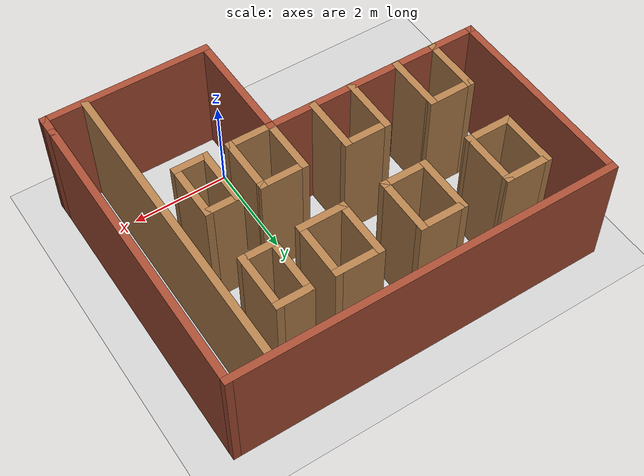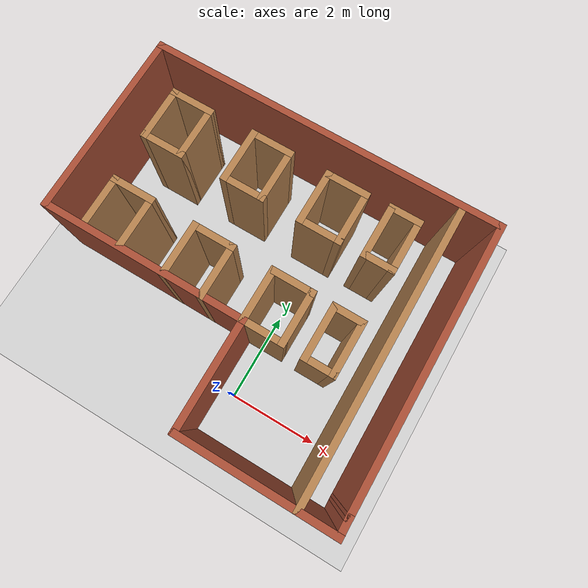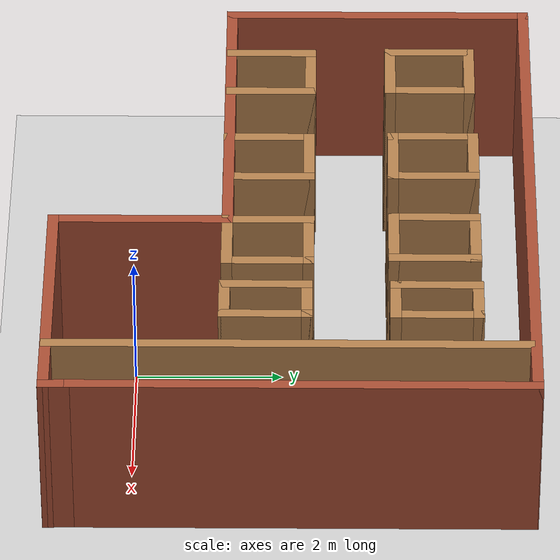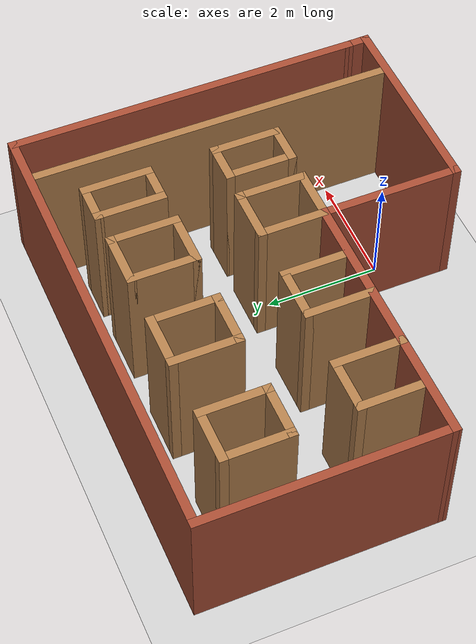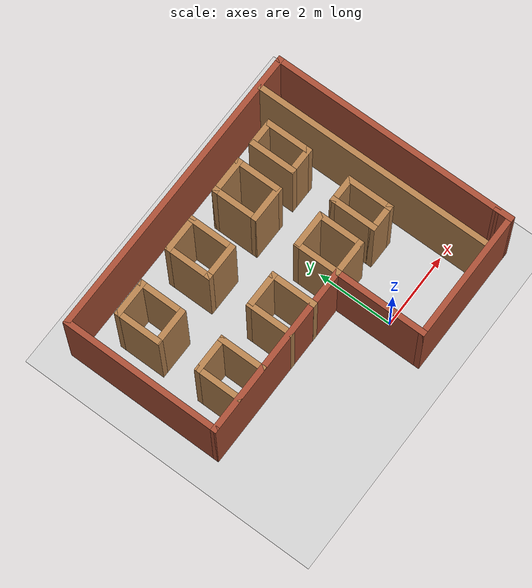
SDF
<sdf version="1.7">
 <world name="default">
  <light name="sun" type="directional">
   <pose>0 0 10 0 -0 0</pose>
   <diffuse>0.8 0.8 0.8 1</diffuse>
   <specular>0.2 0.2 0.2 1</specular>
   <attenuation>
    <range>1000</range>
    <constant>0.9</constant>
    <linear>0.01</linear>
    <quadratic>0.001</quadratic>
   </attenuation>
   <direction>-0.5 0.1 -0.9</direction>
   <spot><inner_angle>0</inner_angle><outer_angle>0</outer_angle><falloff>0</falloff></spot>
  </light>
  <model name="ground_plane">
   <static>1</static>
   <link name="link">
    <collision name="collision">
     <geometry><plane><normal>0 0 1</normal><size>100 100</size></plane></geometry>
     <surface>
      <contact><collide_bitmask>65535</collide_bitmask></contact>
      <friction><ode><mu>100</mu><mu2>50</mu2></ode></friction>
     </surface>
    </collision>
    <visual name="visual">
     <cast_shadows>0</cast_shadows>
     <geometry><plane><normal>0 0 1</normal><size>100 100</size></plane></geometry>
     <material>
      <script><uri>file://media/materials/scripts/gazebo.material</uri><name>Gazebo/Grey</name></script>
     </material>
    </visual>
   </link>
  </model>
  <gravity>0 0 -9.8</gravity>
  <magnetic_field>6e-06 2.3e-05 -4.2e-05</magnetic_field>
  <atmosphere type="adiabatic"/>
  <physics type="ode">
   <max_step_size>0.001</max_step_size>
   <real_time_factor>1</real_time_factor>
   <real_time_update_rate>1000</real_time_update_rate>
  </physics>
  <scene><ambient>0.4 0.4 0.4 1</ambient><background>0.7 0.7 0.7 1</background><shadows>1</shadows></scene>
  <spherical_coordinates>
   <surface_model>EARTH_WGS84</surface_model>
   <latitude_deg>0</latitude_deg>
   <longitude_deg>0</longitude_deg>
   <elevation>0</elevation>
   <heading_deg>0</heading_deg>
  </spherical_coordinates>
  <model name="lab_maps">
   <pose>-0.392707 2.13484 0 0 0 -1.5705</pose>
   <link name="Wall_0">
    <collision name="Wall_0_Collision">
     <geometry><box><size>6.25 0.15 2.5</size></box></geometry>
     <pose>0 0 1.25 0 -0 0</pose>
    </collision>
    <visual name="Wall_0_Visual">
     <pose>0 0 1.25 0 -0 0</pose>
     <geometry><box><size>6.25 0.15 2.5</size></box></geometry>
     <material>
      <script><uri>file://media/materials/scripts/gazebo.material</uri><name>Gazebo/Bricks</name></script>
      <ambient>1 1 1 1</ambient>
     </material>
     <meta><layer>0</layer></meta>
    </visual>
    <pose>-0.175595 3.33512 0 0 -0 0</pose>
   </link>
   <link name="Wall_11">
    <collision name="Wall_11_Collision">
     <geometry><box><size>3.5 0.15 2.5</size></box></geometry>
     <pose>0 0 1.25 0 -0 0</pose>
    </collision>
    <visual name="Wall_11_Visual">
     <pose>0 0 1.25 0 -0 0</pose>
     <geometry><box><size>3.5 0.15 2.5</size></box></geometry>
     <material>
      <script><uri>file://media/materials/scripts/gazebo.material</uri><name>Gazebo/Bricks</name></script>
      <ambient>1 1 1 1</ambient>
     </material>
     <meta><layer>0</layer></meta>
    </visual>
    <pose>3.22456 1.665 0 0 -0 1.5708</pose>
   </link>
   <link name="Wall_12">
    <collision name="Wall_12_Collision">
     <geometry><box><size>0.500187 0.15 2.5</size></box></geometry>
     <pose>0 0 1.25 0 -0 0</pose>
    </collision>
    <visual name="Wall_12_Visual">
     <pose>0 0 1.25 0 -0 0</pose>
     <geometry><box><size>0.500187 0.15 2.5</size></box></geometry>
     <material>
      <script><uri>file://media/materials/scripts/gazebo.material</uri><name>Gazebo/Bricks</name></script>
      <ambient>1 1 1 1</ambient>
     </material>
     <meta><layer>0</layer></meta>
    </visual>
    <pose>3.04948 3.33756 0 0 -0 -3.12766</pose>
   </link>
   <link name="Wall_14">
    <collision name="Wall_14_Collision">
     <geometry><box><size>6.5 0.15 2.5</size></box></geometry>
     <pose>0 0 1.25 0 -0 0</pose>
    </collision>
    <visual name="Wall_14_Visual">
     <pose>0 0 1.25 0 -0 0</pose>
     <geometry><box><size>6.5 0.15 2.5</size></box></geometry>
     <material>
      <script><uri>file://media/materials/scripts/gazebo.material</uri><name>Gazebo/Wood</name></script>
      <ambient>1 1 1 1</ambient>
     </material>
     <meta><layer>0</layer></meta>
    </visual>
    <pose>0.042844 2.53008 0 0 -0 3.14159</pose>
   </link>
   <link name="Wall_16">
    <collision name="Wall_16_Collision">
     <geometry><box><size>1.25 0.15 2.5</size></box></geometry>
     <pose>0 0 1.25 0 -0 0</pose>
    </collision>
    <visual name="Wall_16_Visual">
     <pose>0 0 1.25 0 -0 0</pose>
     <geometry><box><size>1.25 0.15 2.5</size></box></geometry>
     <material>
      <script><uri>file://media/materials/scripts/gazebo.material</uri><name>Gazebo/Wood</name></script>
      <ambient>1 1 1 1</ambient>
     </material>
     <meta><layer>0</layer></meta>
    </visual>
    <pose>0.313405 -3.64052 0 0 -0 3.14159</pose>
   </link>
   <link name="Wall_17">
    <collision name="Wall_17_Collision">
     <geometry><box><size>1 0.15 2.5</size></box></geometry>
     <pose>0 0 1.25 0 -0 0</pose>
    </collision>
    <visual name="Wall_17_Visual">
     <pose>0 0 1.25 0 -0 0</pose>
     <geometry><box><size>1 0.15 2.5</size></box></geometry>
     <material>
      <script><uri>file://media/materials/scripts/gazebo.material</uri><name>Gazebo/Wood</name></script>
      <ambient>1 1 1 1</ambient>
     </material>
     <meta><layer>0</layer></meta>
    </visual>
    <pose>-0.236595 -3.21552 0 0 -0 1.5708</pose>
   </link>
   <link name="Wall_18">
    <collision name="Wall_18_Collision">
     <geometry><box><size>1.25 0.15 2.5</size></box></geometry>
     <pose>0 0 1.25 0 -0 0</pose>
    </collision>
    <visual name="Wall_18_Visual">
     <pose>0 0 1.25 0 -0 0</pose>
     <geometry><box><size>1.25 0.15 2.5</size></box></geometry>
     <material>
      <script><uri>file://media/materials/scripts/gazebo.material</uri><name>Gazebo/Wood</name></script>
      <ambient>1 1 1 1</ambient>
     </material>
     <meta><layer>0</layer></meta>
    </visual>
    <pose>0.313405 -2.79052 0 0 -0 0</pose>
   </link>
   <link name="Wall_2">
    <collision name="Wall_2_Collision">
     <geometry><box><size>8 0.15 2.5</size></box></geometry>
     <pose>0 0 1.25 0 -0 0</pose>
    </collision>
    <visual name="Wall_2_Visual">
     <pose>0 0 1.25 0 -0 0</pose>
     <geometry><box><size>8 0.15 2.5</size></box></geometry>
     <material>
      <script><uri>file://media/materials/scripts/gazebo.material</uri><name>Gazebo/Bricks</name></script>
      <ambient>1 1 1 1</ambient>
     </material>
     <meta><layer>0</layer></meta>
    </visual>
    <pose>-3.2256 -0.589879 0 0 -0 -1.5708</pose>
   </link>
   <link name="Wall_20">
    <collision name="Wall_20_Collision">
     <geometry><box><size>1.25 0.15 2.5</size></box></geometry>
     <pose>0 0 1.25 0 -0 0</pose>
    </collision>
    <visual name="Wall_20_Visual">
     <pose>0 0 1.25 0 -0 0</pose>
     <geometry><box><size>1.25 0.15 2.5</size></box></geometry>
     <material>
      <script><uri>file://media/materials/scripts/gazebo.material</uri><name>Gazebo/Wood</name></script>
      <ambient>1 1 1 1</ambient>
     </material>
     <meta><layer>0</layer></meta>
    </visual>
    <pose>0.32663 -1.77579 0 0 -0 3.14159</pose>
   </link>
   <link name="Wall_21">
    <collision name="Wall_21_Collision">
     <geometry><box><size>1 0.15 2.5</size></box></geometry>
     <pose>0 0 1.25 0 -0 0</pose>
    </collision>
    <visual name="Wall_21_Visual">
     <pose>0 0 1.25 0 -0 0</pose>
     <geometry><box><size>1 0.15 2.5</size></box></geometry>
     <material>
      <script><uri>file://media/materials/scripts/gazebo.material</uri><name>Gazebo/Wood</name></script>
      <ambient>1 1 1 1</ambient>
     </material>
     <meta><layer>0</layer></meta>
    </visual>
    <pose>-0.22337 -1.35079 0 0 -0 1.5708</pose>
   </link>
   <link name="Wall_22">
    <collision name="Wall_22_Collision">
     <geometry><box><size>1.25 0.15 2.5</size></box></geometry>
     <pose>0 0 1.25 0 -0 0</pose>
    </collision>
    <visual name="Wall_22_Visual">
     <pose>0 0 1.25 0 -0 0</pose>
     <geometry><box><size>1.25 0.15 2.5</size></box></geometry>
     <material>
      <script><uri>file://media/materials/scripts/gazebo.material</uri><name>Gazebo/Wood</name></script>
      <ambient>1 1 1 1</ambient>
     </material>
     <meta><layer>0</layer></meta>
    </visual>
    <pose>0.32663 -0.925793 0 0 -0 0</pose>
   </link>
   <link name="Wall_24">
    <collision name="Wall_24_Collision">
     <geometry><box><size>1.25 0.15 2.5</size></box></geometry>
     <pose>0 0 1.25 0 -0 0</pose>
    </collision>
    <visual name="Wall_24_Visual">
     <pose>0 0 1.25 0 -0 0</pose>
     <geometry><box><size>1.25 0.15 2.5</size></box></geometry>
     <material>
      <script><uri>file://media/materials/scripts/gazebo.material</uri><name>Gazebo/Wood</name></script>
      <ambient>1 1 1 1</ambient>
     </material>
     <meta><layer>0</layer></meta>
    </visual>
    <pose>0.324558 -0.009999 0 0 -0 3.14159</pose>
   </link>
   <link name="Wall_25">
    <collision name="Wall_25_Collision">
     <geometry><box><size>1 0.15 2.5</size></box></geometry>
     <pose>0 0 1.25 0 -0 0</pose>
    </collision>
    <visual name="Wall_25_Visual">
     <pose>0 0 1.25 0 -0 0</pose>
     <geometry><box><size>1 0.15 2.5</size></box></geometry>
     <material>
      <script><uri>file://media/materials/scripts/gazebo.material</uri><name>Gazebo/Wood</name></script>
      <ambient>1 1 1 1</ambient>
     </material>
     <meta><layer>0</layer></meta>
    </visual>
    <pose>-0.225442 0.415001 0 0 -0 1.5708</pose>
   </link>
   <link name="Wall_26">
    <collision name="Wall_26_Collision">
     <geometry><box><size>1.25 0.15 2.5</size></box></geometry>
     <pose>0 0 1.25 0 -0 0</pose>
    </collision>
    <visual name="Wall_26_Visual">
     <pose>0 0 1.25 0 -0 0</pose>
     <geometry><box><size>1.25 0.15 2.5</size></box></geometry>
     <material>
      <script><uri>file://media/materials/scripts/gazebo.material</uri><name>Gazebo/Wood</name></script>
      <ambient>1 1 1 1</ambient>
     </material>
     <meta><layer>0</layer></meta>
    </visual>
    <pose>0.324558 0.840001 0 0 -0 0</pose>
   </link>
   <link name="Wall_27">
    <collision name="Wall_27_Collision">
     <geometry><box><size>1 0.15 2.5</size></box></geometry>
     <pose>0 0 1.25 0 -0 0</pose>
    </collision>
    <visual name="Wall_27_Visual">
     <pose>0 0 1.25 0 -0 0</pose>
     <geometry><box><size>1 0.15 2.5</size></box></geometry>
     <material>
      <script><uri>file://media/materials/scripts/gazebo.material</uri><name>Gazebo/Wood</name></script>
      <ambient>1 1 1 1</ambient>
     </material>
     <meta><layer>0</layer></meta>
    </visual>
    <pose>0.874558 0.415001 0 0 -0 -1.5708</pose>
   </link>
   <link name="Wall_34">
    <collision name="Wall_34_Collision">
     <geometry><box><size>1.25 0.15 2.5</size></box></geometry>
     <pose>0 0 1.25 0 -0 0</pose>
    </collision>
    <visual name="Wall_34_Visual">
     <pose>0 0 1.25 0 -0 0</pose>
     <geometry><box><size>1.25 0.15 2.5</size></box></geometry>
     <material>
      <script><uri>file://media/materials/scripts/gazebo.material</uri><name>Gazebo/Wood</name></script>
      <ambient>1 1 1 1</ambient>
     </material>
     <meta><layer>0</layer></meta>
    </visual>
    <pose>-1.89285 -2.82057 0 0 -0 0</pose>
   </link>
   <link name="Wall_35">
    <collision name="Wall_35_Collision">
     <geometry><box><size>1 0.15 2.5</size></box></geometry>
     <pose>0 0 1.25 0 -0 0</pose>
    </collision>
    <visual name="Wall_35_Visual">
     <pose>0 0 1.25 0 -0 0</pose>
     <geometry><box><size>1 0.15 2.5</size></box></geometry>
     <material>
      <script><uri>file://media/materials/scripts/gazebo.material</uri><name>Gazebo/Wood</name></script>
      <ambient>1 1 1 1</ambient>
     </material>
     <meta><layer>0</layer></meta>
    </visual>
    <pose>-1.34285 -3.24557 0 0 -0 -1.5708</pose>
   </link>
   <link name="Wall_38">
    <collision name="Wall_38_Collision">
     <geometry><box><size>1.25 0.15 2.5</size></box></geometry>
     <pose>0 0 1.25 0 -0 0</pose>
    </collision>
    <visual name="Wall_38_Visual">
     <pose>0 0 1.25 0 -0 0</pose>
     <geometry><box><size>1.25 0.15 2.5</size></box></geometry>
     <material>
      <script><uri>file://media/materials/scripts/gazebo.material</uri><name>Gazebo/Wood</name></script>
      <ambient>1 1 1 1</ambient>
     </material>
     <meta><layer>0</layer></meta>
    </visual>
    <pose>-1.89285 -3.67057 0 0 -0 3.14159</pose>
   </link>
   <link name="Wall_39">
    <collision name="Wall_39_Collision">
     <geometry><box><size>1 0.15 2.5</size></box></geometry>
     <pose>0 0 1.25 0 -0 0</pose>
    </collision>
    <visual name="Wall_39_Visual">
     <pose>0 0 1.25 0 -0 0</pose>
     <geometry><box><size>1 0.15 2.5</size></box></geometry>
     <material>
      <script><uri>file://media/materials/scripts/gazebo.material</uri><name>Gazebo/Wood</name></script>
      <ambient>1 1 1 1</ambient>
     </material>
     <meta><layer>0</layer></meta>
    </visual>
    <pose>-2.44285 -3.24557 0 0 -0 1.5708</pose>
   </link>
   <link name="Wall_4">
    <collision name="Wall_4_Collision">
     <geometry><box><size>4.25 0.15 2.5</size></box></geometry>
     <pose>0 0 1.25 0 -0 0</pose>
    </collision>
    <visual name="Wall_4_Visual">
     <pose>0 0 1.25 0 -0 0</pose>
     <geometry><box><size>4.25 0.15 2.5</size></box></geometry>
     <material>
      <script><uri>file://media/materials/scripts/gazebo.material</uri><name>Gazebo/Bricks</name></script>
      <ambient>1 1 1 1</ambient>
     </material>
     <meta><layer>0</layer></meta>
    </visual>
    <pose>-1.17552 -4.51494 0 0 -0 -2.9e-05</pose>
   </link>
   <link name="Wall_41">
    <collision name="Wall_41_Collision">
     <geometry><box><size>1.25 0.15 2.5</size></box></geometry>
     <pose>0 0 1.25 0 -0 0</pose>
    </collision>
    <visual name="Wall_41_Visual">
     <pose>0 0 1.25 0 -0 0</pose>
     <geometry><box><size>1.25 0.15 2.5</size></box></geometry>
     <material>
      <script><uri>file://media/materials/scripts/gazebo.material</uri><name>Gazebo/Wood</name></script>
      <ambient>1 1 1 1</ambient>
     </material>
     <meta><layer>0</layer></meta>
    </visual>
    <pose>-1.92162 -1.80224 0 0 -0 3.14159</pose>
   </link>
   <link name="Wall_42">
    <collision name="Wall_42_Collision">
     <geometry><box><size>1 0.15 2.5</size></box></geometry>
     <pose>0 0 1.25 0 -0 0</pose>
    </collision>
    <visual name="Wall_42_Visual">
     <pose>0 0 1.25 0 -0 0</pose>
     <geometry><box><size>1 0.15 2.5</size></box></geometry>
     <material>
      <script><uri>file://media/materials/scripts/gazebo.material</uri><name>Gazebo/Wood</name></script>
      <ambient>1 1 1 1</ambient>
     </material>
     <meta><layer>0</layer></meta>
    </visual>
    <pose>-2.47162 -1.37724 0 0 -0 1.5708</pose>
   </link>
   <link name="Wall_43">
    <collision name="Wall_43_Collision">
     <geometry><box><size>1.25 0.15 2.5</size></box></geometry>
     <pose>0 0 1.25 0 -0 0</pose>
    </collision>
    <visual name="Wall_43_Visual">
     <pose>0 0 1.25 0 -0 0</pose>
     <geometry><box><size>1.25 0.15 2.5</size></box></geometry>
     <material>
      <script><uri>file://media/materials/scripts/gazebo.material</uri><name>Gazebo/Wood</name></script>
      <ambient>1 1 1 1</ambient>
     </material>
     <meta><layer>0</layer></meta>
    </visual>
    <pose>-1.92162 -0.952243 0 0 -0 0</pose>
   </link>
   <link name="Wall_44">
    <collision name="Wall_44_Collision">
     <geometry><box><size>1 0.15 2.5</size></box></geometry>
     <pose>0 0 1.25 0 -0 0</pose>
    </collision>
    <visual name="Wall_44_Visual">
     <pose>0 0 1.25 0 -0 0</pose>
     <geometry><box><size>1 0.15 2.5</size></box></geometry>
     <material>
      <script><uri>file://media/materials/scripts/gazebo.material</uri><name>Gazebo/Wood</name></script>
      <ambient>1 1 1 1</ambient>
     </material>
     <meta><layer>0</layer></meta>
    </visual>
    <pose>-1.37162 -1.37724 0 0 -0 -1.5708</pose>
   </link>
   <link name="Wall_46">
    <collision name="Wall_46_Collision">
     <geometry><box><size>1 0.15 2.5</size></box></geometry>
     <pose>0 0 1.25 0 -0 0</pose>
    </collision>
    <visual name="Wall_46_Visual">
     <pose>0 0 1.25 0 -0 0</pose>
     <geometry><box><size>1 0.15 2.5</size></box></geometry>
     <material>
      <script><uri>file://media/materials/scripts/gazebo.material</uri><name>Gazebo/Wood</name></script>
      <ambient>1 1 1 1</ambient>
     </material>
     <meta><layer>0</layer></meta>
    </visual>
    <pose>-2.46929 0.351632 0 0 -0 -1.5708</pose>
   </link>
   <link name="Wall_47">
    <collision name="Wall_47_Collision">
     <geometry><box><size>1.25 0.15 2.5</size></box></geometry>
     <pose>0 0 1.25 0 -0 0</pose>
    </collision>
    <visual name="Wall_47_Visual">
     <pose>0 0 1.25 0 -0 0</pose>
     <geometry><box><size>1.25 0.15 2.5</size></box></geometry>
     <material>
      <script><uri>file://media/materials/scripts/gazebo.material</uri><name>Gazebo/Wood</name></script>
      <ambient>1 1 1 1</ambient>
     </material>
     <meta><layer>0</layer></meta>
    </visual>
    <pose>-1.91929 -0.073368 0 0 -0 0</pose>
   </link>
   <link name="Wall_48">
    <collision name="Wall_48_Collision">
     <geometry><box><size>1 0.15 2.5</size></box></geometry>
     <pose>0 0 1.25 0 -0 0</pose>
    </collision>
    <visual name="Wall_48_Visual">
     <pose>0 0 1.25 0 -0 0</pose>
     <geometry><box><size>1 0.15 2.5</size></box></geometry>
     <material>
      <script><uri>file://media/materials/scripts/gazebo.material</uri><name>Gazebo/Wood</name></script>
      <ambient>1 1 1 1</ambient>
     </material>
     <meta><layer>0</layer></meta>
    </visual>
    <pose>-1.36929 0.351632 0 0 -0 1.5708</pose>
   </link>
   <link name="Wall_49">
    <collision name="Wall_49_Collision">
     <geometry><box><size>1.25 0.15 2.5</size></box></geometry>
     <pose>0 0 1.25 0 -0 0</pose>
    </collision>
    <visual name="Wall_49_Visual">
     <pose>0 0 1.25 0 -0 0</pose>
     <geometry><box><size>1.25 0.15 2.5</size></box></geometry>
     <material>
      <script><uri>file://media/materials/scripts/gazebo.material</uri><name>Gazebo/Wood</name></script>
      <ambient>1 1 1 1</ambient>
     </material>
     <meta><layer>0</layer></meta>
    </visual>
    <pose>-1.91929 0.776632 0 0 -0 3.14159</pose>
   </link>
   <link name="Wall_5">
    <collision name="Wall_5_Collision">
     <geometry><box><size>4.655 0.15 2.5</size></box></geometry>
     <pose>0 0 1.25 0 -0 0</pose>
    </collision>
    <visual name="Wall_5_Visual">
     <pose>0 0 1.25 0 -0 0</pose>
     <geometry><box><size>4.655 0.15 2.5</size></box></geometry>
     <material>
      <script><uri>file://media/materials/scripts/gazebo.material</uri><name>Gazebo/Bricks</name></script>
      <ambient>1 1 1 1</ambient>
     </material>
     <meta><layer>0</layer></meta>
    </visual>
    <pose>0.874558 -2.2625 0 0 -0 1.5708</pose>
   </link>
   <link name="Wall_51">
    <collision name="Wall_51_Collision">
     <geometry><box><size>0.75 0.15 2.5</size></box></geometry>
     <pose>0 0 1.25 0 -0 0</pose>
    </collision>
    <visual name="Wall_51_Visual">
     <pose>0 0 1.25 0 -0 0</pose>
     <geometry><box><size>0.75 0.15 2.5</size></box></geometry>
     <material>
      <script><uri>file://media/materials/scripts/gazebo.material</uri><name>Gazebo/Wood</name></script>
      <ambient>1 1 1 1</ambient>
     </material>
     <meta><layer>0</layer></meta>
    </visual>
    <pose>-0.20782 1.62721 0 0 -0 -1.5708</pose>
   </link>
   <link name="Wall_52">
    <collision name="Wall_52_Collision">
     <geometry><box><size>1.25 0.15 2.5</size></box></geometry>
     <pose>0 0 1.25 0 -0 0</pose>
    </collision>
    <visual name="Wall_52_Visual">
     <pose>0 0 1.25 0 -0 0</pose>
     <geometry><box><size>1.25 0.15 2.5</size></box></geometry>
     <material>
      <script><uri>file://media/materials/scripts/gazebo.material</uri><name>Gazebo/Wood</name></script>
      <ambient>1 1 1 1</ambient>
     </material>
     <meta><layer>0</layer></meta>
    </visual>
    <pose>0.34218 1.32721 0 0 -0 0</pose>
   </link>
   <link name="Wall_53">
    <collision name="Wall_53_Collision">
     <geometry><box><size>0.75 0.15 2.5</size></box></geometry>
     <pose>0 0 1.25 0 -0 0</pose>
    </collision>
    <visual name="Wall_53_Visual">
     <pose>0 0 1.25 0 -0 0</pose>
     <geometry><box><size>0.75 0.15 2.5</size></box></geometry>
     <material>
      <script><uri>file://media/materials/scripts/gazebo.material</uri><name>Gazebo/Wood</name></script>
      <ambient>1 1 1 1</ambient>
     </material>
     <meta><layer>0</layer></meta>
    </visual>
    <pose>0.89218 1.62721 0 0 -0 1.5708</pose>
   </link>
   <link name="Wall_54">
    <collision name="Wall_54_Collision">
     <geometry><box><size>1.25 0.15 2.5</size></box></geometry>
     <pose>0 0 1.25 0 -0 0</pose>
    </collision>
    <visual name="Wall_54_Visual">
     <pose>0 0 1.25 0 -0 0</pose>
     <geometry><box><size>1.25 0.15 2.5</size></box></geometry>
     <material>
      <script><uri>file://media/materials/scripts/gazebo.material</uri><name>Gazebo/Wood</name></script>
      <ambient>1 1 1 1</ambient>
     </material>
     <meta><layer>0</layer></meta>
    </visual>
    <pose>0.34218 1.92721 0 0 -0 3.14159</pose>
   </link>
   <link name="Wall_58">
    <collision name="Wall_58_Collision">
     <geometry><box><size>0.75 0.15 2.5</size></box></geometry>
     <pose>0 0 1.25 0 -0 0</pose>
    </collision>
    <visual name="Wall_58_Visual">
     <pose>0 0 1.25 0 -0 0</pose>
     <geometry><box><size>0.75 0.15 2.5</size></box></geometry>
     <material>
      <script><uri>file://media/materials/scripts/gazebo.material</uri><name>Gazebo/Wood</name></script>
      <ambient>1 1 1 1</ambient>
     </material>
     <meta><layer>0</layer></meta>
    </visual>
    <pose>-1.38485 1.63208 0 0 -0 1.5708</pose>
   </link>
   <link name="Wall_59">
    <collision name="Wall_59_Collision">
     <geometry><box><size>1.25 0.15 2.5</size></box></geometry>
     <pose>0 0 1.25 0 -0 0</pose>
    </collision>
    <visual name="Wall_59_Visual">
     <pose>0 0 1.25 0 -0 0</pose>
     <geometry><box><size>1.25 0.15 2.5</size></box></geometry>
     <material>
      <script><uri>file://media/materials/scripts/gazebo.material</uri><name>Gazebo/Wood</name></script>
      <ambient>1 1 1 1</ambient>
     </material>
     <meta><layer>0</layer></meta>
    </visual>
    <pose>-1.93484 1.93208 0 0 -0 3.14159</pose>
   </link>
   <link name="Wall_60">
    <collision name="Wall_60_Collision">
     <geometry><box><size>0.75 0.15 2.5</size></box></geometry>
     <pose>0 0 1.25 0 -0 0</pose>
    </collision>
    <visual name="Wall_60_Visual">
     <pose>0 0 1.25 0 -0 0</pose>
     <geometry><box><size>0.75 0.15 2.5</size></box></geometry>
     <material>
      <script><uri>file://media/materials/scripts/gazebo.material</uri><name>Gazebo/Wood</name></script>
      <ambient>1 1 1 1</ambient>
     </material>
     <meta><layer>0</layer></meta>
    </visual>
    <pose>-2.48484 1.63208 0 0 -0 -1.5708</pose>
   </link>
   <link name="Wall_61">
    <collision name="Wall_61_Collision">
     <geometry><box><size>1.25 0.15 2.5</size></box></geometry>
     <pose>0 0 1.25 0 -0 0</pose>
    </collision>
    <visual name="Wall_61_Visual">
     <pose>0 0 1.25 0 -0 0</pose>
     <geometry><box><size>1.25 0.15 2.5</size></box></geometry>
     <material>
      <script><uri>file://media/materials/scripts/gazebo.material</uri><name>Gazebo/Wood</name></script>
      <ambient>1 1 1 1</ambient>
     </material>
     <meta><layer>0</layer></meta>
    </visual>
    <pose>-1.93484 1.33208 0 0 -0 0</pose>
   </link>
   <link name="Wall_7">
    <collision name="Wall_7_Collision">
     <geometry><box><size>2.5 0.15 2.5</size></box></geometry>
     <pose>0 0 1.25 0 -0 0</pose>
    </collision>
    <visual name="Wall_7_Visual">
     <pose>0 0 1.25 0 -0 0</pose>
     <geometry><box><size>2.5 0.15 2.5</size></box></geometry>
     <material>
      <script><uri>file://media/materials/scripts/gazebo.material</uri><name>Gazebo/Bricks</name></script>
      <ambient>1 1 1 1</ambient>
     </material>
     <meta><layer>0</layer></meta>
    </visual>
    <pose>2.04956 -0.009999 0 0 -0 0</pose>
   </link>
   <static>1</static>
  </model>
 </world>
</sdf>
